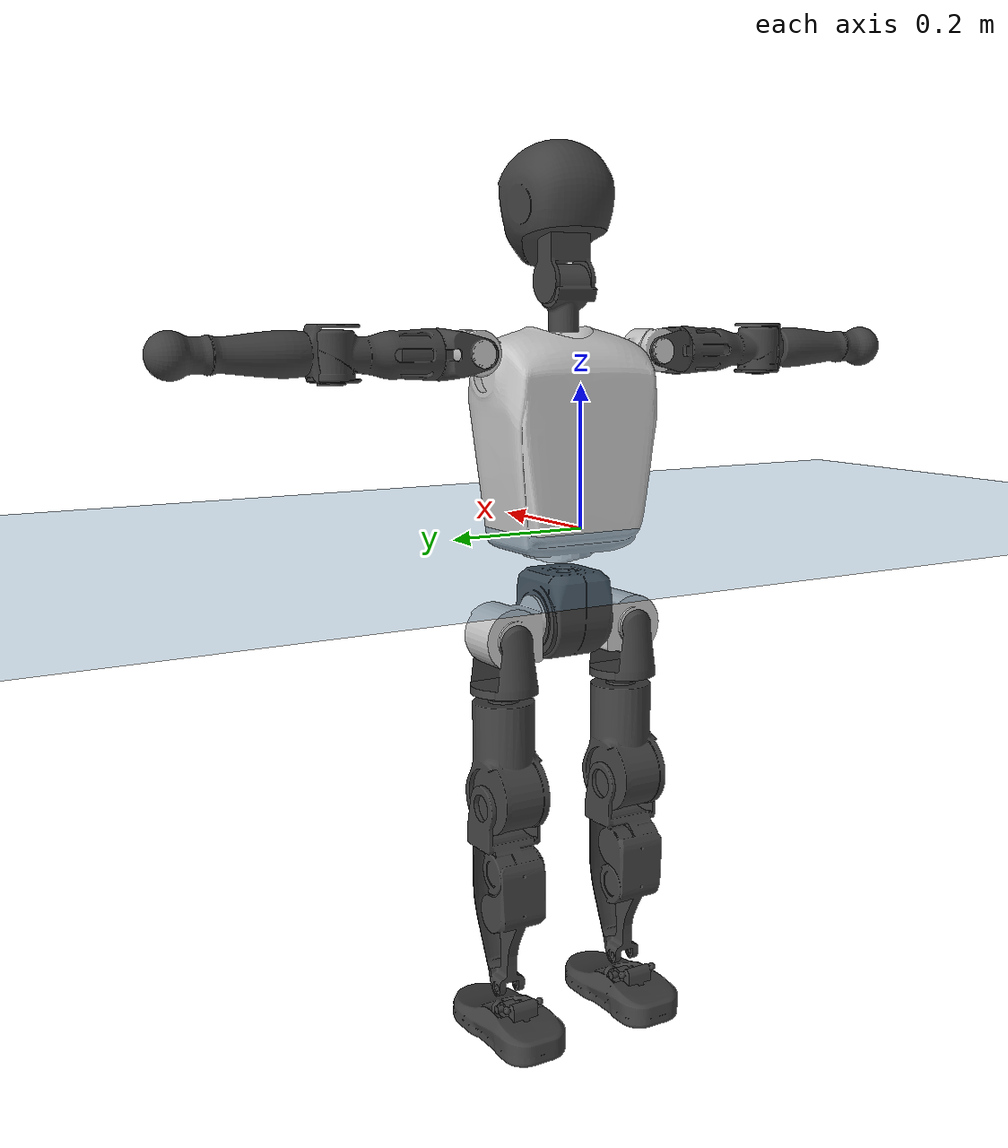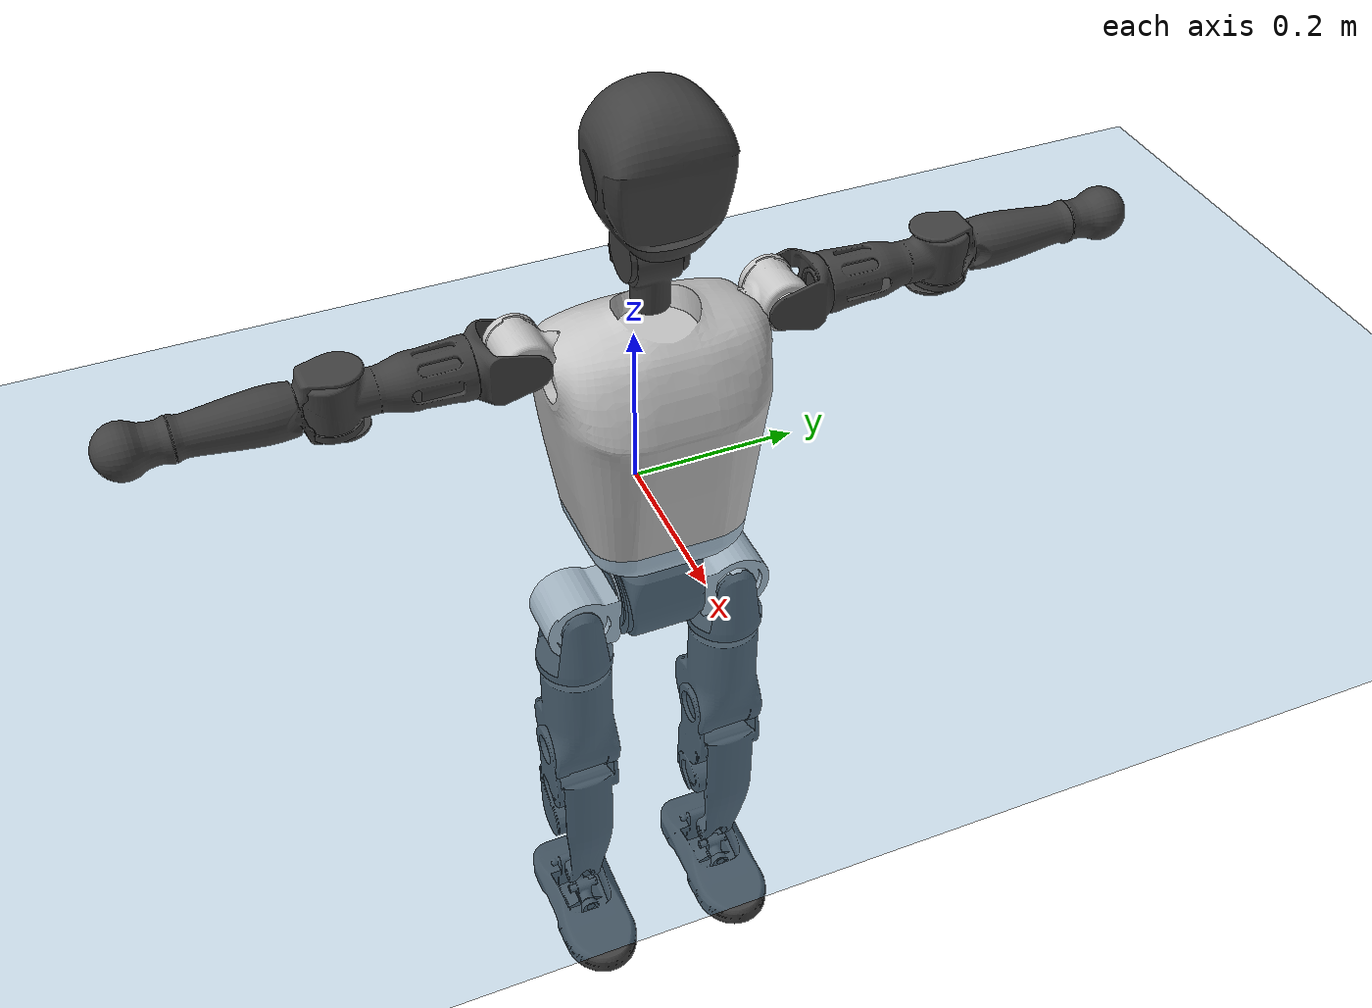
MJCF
<mujoco model="T1">
  <compiler angle="radian" assetdir="assets" balanceinertia="true" inertiafromgeom="false"/>

  <option timestep="0.005" density="1.2" viscosity="2e-05"/>

  <size nkey="1"/>

  <visual>
    <quality shadowsize="8192"/>
    <map shadowclip="0.5"/>
  </visual>

  <default>
    <default class="/">
      <joint armature="0.01" damping="0.01" frictionloss="0.1"/>
      <geom contype="0" conaffinity="0" group="1" solref="-1000 -80"/>
      <site size="0.01 0.005 0.005" group="5"/>
      <general forcelimited="true" biastype="affine" gainprm="25" biasprm="0 -25 -0.6"/>
      <default class="t1">
        <geom rgba="0.25 0.25 0.25 1"/>
        <default class="visual">
          <geom type="mesh" group="2"/>
        </default>
        <default class="collision">
          <geom group="3"/>
        </default>
        <default class="foot">
          <geom size="0.1115 0.05 0.015" type="box" condim="6" group="4" priority="1" solimp="0.015 1 0.015"/>
        </default>
        <default class="reward_collision_sphere">
          <geom group="5" rgba="1 0 0 1"/>
        </default>
      </default>
    </default>
  </default>

  <asset>
    <texture type="skybox" colorspace="auto" name="//unnamed_texture_0" builtin="gradient" rgb1="0.95 0.95 0.95" rgb2="0.95 0.95 0.95" width="100" height="600"/>
    <texture type="2d" colorspace="auto" name="texplane" builtin="checker" rgb1="0.345 0.575 0.748" rgb2="0.345 0.575 0.748" markrgb="1 1 1" width="512" height="512"/>
    <material name="MatPlane" class="/" texture="texplane" texuniform="true" texrepeat="2 2" specular="0.9"/>
    <mesh name="Trunk" class="/" file="Trunk.stl"/>
    <mesh name="H1" class="/" file="H1.stl"/>
    <mesh name="H2" class="/" file="H2.stl"/>
    <mesh name="AL1" class="/" file="AL1.stl"/>
    <mesh name="AL2" class="/" file="AL2.stl"/>
    <mesh name="AL3" class="/" file="AL3.stl"/>
    <mesh name="left_hand_link" class="/" file="left_hand_link.stl"/>
    <mesh name="AR1" class="/" file="AR1.stl"/>
    <mesh name="AR2" class="/" file="AR2.stl"/>
    <mesh name="AR3" class="/" file="AR3.stl"/>
    <mesh name="right_hand_link" class="/" file="right_hand_link.stl"/>
    <mesh name="Waist" class="/" file="Waist.stl"/>
    <mesh name="Hip_Pitch_Left" class="/" file="Hip_Pitch_Left.stl"/>
    <mesh name="Hip_Roll_Left" class="/" file="Hip_Roll_Left.stl"/>
    <mesh name="Hip_Yaw_Left" class="/" file="Hip_Yaw_Left.stl"/>
    <mesh name="Shank_Left" class="/" file="Shank_Left.stl"/>
    <mesh name="Ankle_Cross_Left" class="/" file="Ankle_Cross_Left.stl"/>
    <mesh name="left_foot_link" class="/" file="left_foot_link.stl"/>
    <mesh name="Hip_Pitch_Right" class="/" file="Hip_Pitch_Right.stl"/>
    <mesh name="Hip_Roll_Right" class="/" file="Hip_Roll_Right.stl"/>
    <mesh name="Hip_Yaw_Right" class="/" file="Hip_Yaw_Right.stl"/>
    <mesh name="Shank_Right" class="/" file="Shank_Right.stl"/>
    <mesh name="Ankle_Cross_Right" class="/" file="Ankle_Cross_Right.stl"/>
    <mesh name="right_foot_link" class="/" file="right_foot_link.stl"/>
  </asset>

  <worldbody>
    <geom name="floor" class="/" size="100 100 0.125" type="plane" group="0" material="MatPlane"/>
    <light name="toplight_shadow" class="/" pos="0 0 5" dir="0.0990148 0.0990148 -0.990148" type="directional" ambient="0.04 0.04 0.04" diffuse="0.55 0.55 0.55" specular="0.12 0.12 0.12"/>
    <light name="toplight_fill" class="/" pos="0 0 5" dir="0.0990148 0.0990148 -0.990148" type="directional" castshadow="false" ambient="0.04 0.04 0.04" diffuse="0.3 0.3 0.3" specular="0.08 0.08 0.08"/>
    <body name="trunk" childclass="t1" pos="-0.000189113 -0.00034085 -0.00154391" quat="1 -0.000433224 0.000173217 0.000798046">
      <inertial pos="0.0399271 -0.000550958 0.117773" quat="0.999963 -0.000234076 -0.00864346 3.40614e-05" mass="9.11598" diaginertia="0.0188209 0.0537817 0.0958253"/>
      <joint name="//unnamed_joint_0" type="free" armature="0" damping="0" frictionloss="0"/>
      <geom name="//unnamed_geom_1" class="visual" rgba="0.76 0.76 0.76 1" mesh="Trunk"/>
      <geom name="//unnamed_geom_2" class="collision" size="0.0695723 0.0927631 0.139145" pos="0.0437825 0 0.134001" type="box"/>
      <geom name="//unnamed_geom_3" class="reward_collision_sphere" size="0.106678" pos="0.0437825 0 0.111668"/>
      <geom name="//unnamed_geom_4" class="reward_collision_sphere" size="0.0139145" pos="0.0437825 0.079603 0"/>
      <geom name="//unnamed_geom_5" class="reward_collision_sphere" size="0.0139145" pos="0.0437825 -0.079603 0"/>
      <geom name="//unnamed_geom_6" class="reward_collision_sphere" size="0.0139145" pos="0.0437825 0.100206 0.201002"/>
      <geom name="//unnamed_geom_7" class="reward_collision_sphere" size="0.0139145" pos="0.0437825 -0.100206 0.201002"/>
      <site name="imu" pos="-0.00736414 -0.00257442 0.000797617" size="0.00927631"/>
      <camera name="track" pos="0 -1.87301 0" quat="0.707107 0.707107 0 0" mode="trackcom"/>
      <camera name="ego_camera" pos="0.0890244 0 0.469005" quat="-0.5 -0.5 0.5 0.5"/>
      <body name="H1" pos="0.0446664 -0.000143201 0.271201" quat="1 -0.000102458 0.000689685 -0.000106641">
        <inertial pos="-0.000727167 -0.00248858 0.0636728" quat="0.763453 -0.0139438 0.00199035 0.64571" mass="0.353377" diaginertia="4.95792e-05 0.000163389 0.00026122"/>
        <joint name="AAHead_yaw" pos="0 0 0" axis="0.00122581 -0.00145918 0.999998" stiffness="0.000455754" range="-1.6108 1.58249" armature="0.00947458" damping="0.014012" frictionloss="0.088224"/>
        <geom name="//unnamed_geom_8" class="visual" mesh="H1"/>
        <body name="H2" pos="0.000638743 -0.000667881 0.0691485" quat="1 0.000609862 -0.000535353 0.000374341">
          <inertial pos="0.00535202 0.0011416 0.110136" quat="0.988444 0.106218 -0.0744537 -0.0784413" mass="0.492833" diaginertia="0.000421404 0.00138258 0.00299339"/>
          <joint name="Head_pitch" pos="0 0 0" axis="-0.00364138 -0.999972 0.00656959" range="-1.22531 0.381372" armature="0.00973342" damping="0.0145254" frictionloss="0.100703"/>
          <geom name="//unnamed_geom_9" class="visual" mesh="H2"/>
          <geom name="//unnamed_geom_10" class="collision" size="0.0742105" pos="0.00729708 0 0.122835"/>
          <geom name="//unnamed_geom_11" class="reward_collision_sphere" size="0.0834868" pos="0.0145942 0 0.111668"/>
        </body>
      </body>
      <body name="AL1" pos="0.0446437 0.100088 0.244549" quat="1 0.000157933 0.000156083 -0.000238134">
        <inertial pos="-0.00248822 0.0428844 0.000908493" quat="0.504746 0.495054 -0.503963 0.49616" mass="0.426218" diaginertia="0.000282703 0.000961804 0.00050864"/>
        <joint name="Left_Shoulder_Pitch" pos="0 0 0" axis="-0.000781738 1 -0.000320571" range="-3.31208 1.21842" armature="0.00937682" damping="0.0039949" frictionloss="0.0973207"/>
        <geom name="//unnamed_geom_12" class="visual" rgba="0.76 0.76 0.76 1" mesh="AL1"/>
        <body name="AL2" pos="0.0016181 0.0433975 -0.00136183" quat="1 -3.97881e-05 0.000614488 8.07007e-06">
          <inertial pos="0.00360759 0.0358276 -0.00130988" quat="0.487349 0.511079 -0.485161 0.515663" mass="0.127935" diaginertia="8.31719e-05 0.000249286 0.000303919"/>
          <joint name="Left_Shoulder_Roll" pos="0 0 0" axis="-0.999964 -0.00332453 -0.0078172" range="-1.57708 1.74549" armature="0.00949537" damping="0.00606231" frictionloss="0.0857083"/>
          <geom name="//unnamed_geom_13" class="visual" mesh="AL2"/>
          <body name="AL3" pos="-0.000871244 0.0574544 0.000282413" quat="1 0.000191455 -6.87991e-05 -0.000355142">
            <inertial pos="-0.000281854 0.0799011 0.000802936" quat="0.706149 0.708063 -0.000233126 -0.000829045" mass="0.814553" diaginertia="0.00263449 0.00918568 0.00109106"/>
            <joint name="Left_Elbow_Pitch" pos="0 0 0" axis="-0.00532831 -0.999983 -0.00230154" range="-2.26992 2.27362" armature="0.00940575" damping="0.0120012" frictionloss="0.0881634"/>
            <geom name="//unnamed_geom_14" class="visual" mesh="AL3"/>
            <geom name="//unnamed_geom_15" class="collision" size="0.0278289 0.0695723" pos="0 0.0468253 0" quat="0.707105 0.707108 0 0" type="cylinder"/>
            <geom name="//unnamed_geom_16" class="reward_collision_sphere" size="0.0333947"/>
            <body name="left_hand_link" pos="0.00072829 0.136496 0.00270499" quat="1 0.000299661 -0.000125336 -0.000379363">
              <inertial pos="-8.63541e-05 0.101793 0.000522523" quat="0.707407 0.706807 -0.000135418 0.00028691" mass="0.270384" diaginertia="0.00168948 0.00597404 0.000381885"/>
              <joint name="Left_Elbow_Yaw" pos="0 0 0" axis="-0.00723121 0.00584559 0.999957" range="-2.45833 -0.00258183" armature="0.00933082" damping="0.012285" frictionloss="0.0908497"/>
              <geom name="//unnamed_geom_17" class="visual" mesh="left_hand_link"/>
              <geom name="//unnamed_geom_18" class="collision" size="0.0278289 0.0811677" pos="0 0.121746 0" quat="0.707105 0.707108 0 0" type="cylinder"/>
              <geom name="//unnamed_geom_19" class="reward_collision_sphere" size="0.0463816"/>
              <geom name="//unnamed_geom_20" class="reward_collision_sphere" size="0.0324671" pos="0 0.103016 0"/>
              <geom name="//unnamed_geom_21" class="reward_collision_sphere" size="0.0324671" pos="0 0.201349 0"/>
            </body>
          </body>
        </body>
      </body>
      <body name="AR1" pos="0.0419057 -0.0982201 0.245386" quat="1 8.51351e-05 0.000610295 0.000615946">
        <inertial pos="-0.0011155 -0.0413881 -0.000383888" quat="0.505546 0.494472 -0.501173 0.498745" mass="0.428705" diaginertia="0.000283902 0.000942845 0.000515724"/>
        <joint name="Right_Shoulder_Pitch" pos="0 0 0" axis="-0.00127249 -0.999995 -0.00297596" range="-1.22614 3.30256" armature="0.0091429" damping="0.00414707" frictionloss="0.095208"/>
        <geom name="//unnamed_geom_22" class="visual" rgba="0.76 0.76 0.76 1" mesh="AR1"/>
        <body name="AR2" pos="-0.000333667 -0.0443211 -0.00148184" quat="1 -9.03854e-05 -2.13604e-05 -1.9573e-05">
          <inertial pos="0.00380142 -0.0356653 0.000361992" quat="0.511798 0.486929 -0.512665 0.487993" mass="0.126046" diaginertia="8.48268e-05 0.000247405 0.000302547"/>
          <joint name="Right_Shoulder_Roll" pos="0 0 0" axis="-0.999996 0.000575599 0.00274995" range="-1.75083 1.57335" armature="0.00937891" damping="0.00106929" frictionloss="0.0974085"/>
          <geom name="//unnamed_geom_23" class="visual" mesh="AR2"/>
          <body name="AR3" pos="-0.00096478 -0.0560227 0.000531762" quat="1 -5.03131e-09 0.000129732 0.000197697">
            <inertial pos="-0.00214191 -0.0802743 -0.00022101" quat="0.707789 0.706424 1.56055e-06 -7.50331e-06" mass="0.835658" diaginertia="0.00269614 0.00921966 0.0010771"/>
            <joint name="Right_Elbow_Pitch" pos="0 0 0" axis="-0.00144806 0.99999 -0.00423281" range="-2.26686 2.28665" armature="0.00907076" damping="0.0117199" frictionloss="0.0903441"/>
            <geom name="//unnamed_geom_24" class="visual" mesh="AR3"/>
            <geom name="//unnamed_geom_25" class="collision" size="0.0278289 0.0695723" pos="0 -0.0468253 0" quat="0.707105 0.707108 0 0" type="cylinder"/>
            <geom name="//unnamed_geom_26" class="reward_collision_sphere" size="0.0333947"/>
            <body name="right_hand_link" pos="-0.000609909 -0.137299 0.00123389" quat="1 -0.000110413 -6.1897e-05 8.24326e-05">
              <inertial pos="9.53128e-06 -0.102245 0.00154361" quat="0.704093 0.710107 0.00133621 0.00065567" mass="0.264383" diaginertia="0.00168833 0.00600002 0.000373202"/>
              <joint name="Right_Elbow_Yaw" pos="0 0 0" axis="-0.000840827 0.00422034 0.999991" stiffness="0.00200797" range="-0.0100902 2.437" armature="0.00953937" damping="0.0111632" frictionloss="0.0940931"/>
              <geom name="//unnamed_geom_27" class="visual" mesh="right_hand_link"/>
              <geom name="//unnamed_geom_28" class="collision" size="0.0278289 0.0811677" pos="0 -0.121746 0" quat="0.707105 0.707108 0 0" type="cylinder"/>
              <geom name="//unnamed_geom_29" class="reward_collision_sphere" size="0.0463816"/>
              <geom name="//unnamed_geom_30" class="reward_collision_sphere" size="0.0324671" pos="0 -0.103016 0"/>
              <geom name="//unnamed_geom_31" class="reward_collision_sphere" size="0.0324671" pos="0 -0.201349 0"/>
            </body>
          </body>
        </body>
      </body>
      <body name="Waist" pos="0.0456245 -0.00032217 -0.129299" quat="1 -7.06822e-06 -0.000198839 -6.78707e-05">
        <inertial pos="0.00092976 -0.00090765 0.00720981" quat="0.983482 0.00125913 -0.180963 0.00363287" mass="2.05905" diaginertia="0.00111734 0.00388031 0.00829438"/>
        <joint name="Waist" pos="0 0 0" axis="0.000994488 -0.00275608 0.999996" range="-1.5722 1.55381" armature="0.0091139" damping="0" frictionloss="0.0918923"/>
        <geom name="//unnamed_geom_32" class="visual" mesh="Waist"/>
        <body name="Hip_Pitch_Left" pos="0.000472676 0.100873 0.000797331" quat="1 -3.11943e-05 2.82553e-05 1.77533e-05">
          <inertial pos="0.00114717 -0.00723914 -0.0222329" quat="0.97494 0.221967 0.0148976 0.000357826" mass="0.826912" diaginertia="0.000370772 0.00105076 0.00217859"/>
          <joint name="Left_Hip_Pitch" pos="0 0 0" axis="-0.00517352 0.999986 0.00146808" range="-1.78762 1.56701" armature="0.00928252" damping="0.006985" frictionloss="0.0890769"/>
          <geom name="//unnamed_geom_33" class="visual" rgba="0.76 0.76 0.76 1" mesh="Hip_Pitch_Left"/>
          <body name="Hip_Roll_Left" pos="-0.000736075 2.11705e-05 -0.0232308" quat="1 3.22342e-05 -0.000119509 -8.09784e-05">
            <inertial pos="0.00121816 -0.000156273 -0.0600004" quat="0.707724 -0.0101742 -0.00367461 0.706406" mass="0.305934" diaginertia="0.000360551 0.0010854 0.000891294"/>
            <joint name="Left_Hip_Roll" pos="0 0 0" axis="-0.999986 0.00106993 -0.00518813" stiffness="0.000249821" range="-1.56807 0.202762" armature="0.00925341" damping="0.00914716" frictionloss="0.0927399"/>
            <geom name="//unnamed_geom_34" class="visual" mesh="Hip_Roll_Left"/>
            <geom name="//unnamed_geom_35" class="reward_collision_sphere" size="0.0510197"/>
            <body name="Hip_Yaw_Left" pos="0.000460529 -3.72179e-05 -0.0902881" quat="1 -7.05731e-06 3.24704e-05 3.9287e-05">
              <inertial pos="-0.00525974 -0.000799321 -0.101156" quat="0.699857 -0.03333 -0.0304259 0.712856" mass="1.72591" diaginertia="0.0054386 0.0179888 0.00448384"/>
              <joint name="Left_Hip_Yaw" pos="0 0 0" axis="-0.000785889 -0.000420622 -1" range="-0.998931 1.01102" armature="0.00920871" damping="0.0114537" frictionloss="0.087735"/>
              <geom name="//unnamed_geom_36" class="visual" mesh="Hip_Yaw_Left"/>
              <geom name="//unnamed_geom_37" class="collision" size="0.0463816 0.0742105" type="cylinder"/>
              <body name="Shank_Left" pos="-0.00922144 0.00130135 -0.149562" quat="1 0.000797233 0.000120267 -0.000355042">
                <inertial pos="-0.00528224 -0.00151091 -0.13788" quat="0.997877 -0.000976923 -0.0245146 0.0603227" mass="1.37059" diaginertia="0.00714991 0.0245002 0.00319055"/>
                <joint name="Left_Knee_Pitch" pos="0 0 0" axis="-6.08923e-05 1 0.000107562" range="0.00767886 2.33994" armature="0.00929283" damping="0.0117414" frictionloss="0.0868501"/>
                <geom name="//unnamed_geom_38" class="visual" mesh="Shank_Left"/>
                <geom name="//unnamed_geom_39" class="collision" size="0.0463816 0.0695723" pos="0 0 -0.134001" type="cylinder"/>
                <geom name="//unnamed_geom_40" class="reward_collision_sphere" size="0.060296"/>
                <body name="Ankle_Cross_Left" pos="-0.00198505 0.000710223 -0.31359" quat="1 7.64991e-06 4.4879e-05 -9.92567e-05">
                  <inertial pos="-0.00206875 -0.000210631 -0.0088449" quat="0.440945 0.557994 0.548492 0.439735" mass="0.0571497" diaginertia="5.98553e-06 1.81866e-05 1.95567e-05"/>
                  <joint name="Left_Ankle_Pitch" pos="0 0 0" axis="-0.00265188 0.999995 -0.00149675" range="-0.867905 0.32866" armature="0.00937275" damping="0.00537246" frictionloss="0.0940783"/>
                  <geom name="//unnamed_geom_41" class="visual" mesh="Ankle_Cross_Left"/>
                  <body name="left_foot_link" pos="-0.000374875 -9.61494e-05 -0.0140155" quat="1 -0.000168128 -0.000122231 -0.000161846">
                    <inertial pos="-0.000187204 -2.08269e-05 -0.0081969" quat="5.75839e-05 0.620735 -1.94757e-05 0.78402" mass="0.555443" diaginertia="0.000563661 0.00173107 0.00387725"/>
                    <joint name="Left_Ankle_Roll" pos="0 0 0" axis="-1 0.000568255 0.000261425" range="-0.44069 0.420215" armature="0.00923812" damping="0.0178518" frictionloss="0.0923461"/>
                    <geom name="//unnamed_geom_42" class="visual" mesh="left_foot_link"/>
                    <geom name="left_foot" class="foot" size="0.107252 0.0507097 0.0138049" pos="0.00729708 0 -0.0167502"/>
                    <geom name="//unnamed_geom_44" class="reward_collision_sphere" size="0.0482368" pos="0.00729708 0 -0.0167502"/>
                    <geom name="//unnamed_geom_45" class="reward_collision_sphere" size="0.0278289" pos="0.0693223 -0.0215396 -0.0167502"/>
                    <geom name="//unnamed_geom_46" class="reward_collision_sphere" size="0.0278289" pos="-0.0510796 -0.0215396 -0.0167502"/>
                    <site name="left_foot" class="foot" pos="0.00729708 0 -0.0167502" size="0.00927631"/>
                  </body>
                </body>
              </body>
            </body>
          </body>
        </body>
        <body name="Hip_Pitch_Right" pos="-0.0012698 -0.0986398 0.000835222" quat="1 8.6968e-05 -0.000350428 0.00018197">
          <inertial pos="0.000240178 0.00530384 -0.020371" quat="0.974012 -0.22608 0.011632 -0.00723772" mass="0.810345" diaginertia="0.000373813 0.00104943 0.00213382"/>
          <joint name="Right_Hip_Pitch" pos="0 0 0" axis="-0.000229342 -1 -0.000676821" range="-1.58 1.77864" armature="0.00932847" damping="0.00437232" frictionloss="0.100582"/>
          <geom name="//unnamed_geom_47" class="visual" rgba="0.76 0.76 0.76 1" mesh="Hip_Pitch_Right"/>
          <body name="Hip_Roll_Right" pos="-0.00174324 -0.0006732 -0.0218834" quat="1 -9.67421e-05 1.58416e-05 7.01093e-07">
            <inertial pos="0.0016059 -0.000100097 -0.060862" quat="0.707082 -0.00599713 -0.00597884 0.707081" mass="0.307071" diaginertia="0.000351098 0.00107931 0.000883836"/>
            <joint name="Right_Hip_Roll" pos="0 0 0" axis="-1 0.000104703 -0.000236616" range="-0.207353 1.58891" armature="0.00946444" damping="0.0134912" frictionloss="0.0957719"/>
            <geom name="//unnamed_geom_48" class="visual" mesh="Hip_Roll_Right"/>
            <geom name="//unnamed_geom_49" class="reward_collision_sphere" size="0.0510197"/>
            <body name="Hip_Yaw_Right" pos="0.000797324 0.000596033 -0.0910052" quat="1 0.000153648 -6.27888e-05 -0.000136881">
              <inertial pos="-0.00558213 0.00153246 -0.0996024" quat="0.714322 -0.0316382 -0.0345619 0.698247" mass="1.7105" diaginertia="0.00527924 0.0176352 0.00445063"/>
              <joint name="Right_Hip_Yaw" pos="0 0 0" axis="-0.00176297 0.00141303 -0.999997" stiffness="0.00302018" range="-1.00129 1.00558" armature="0.00925668" damping="0.0112343" frictionloss="0.0930907"/>
              <geom name="//unnamed_geom_50" class="visual" mesh="Hip_Yaw_Right"/>
              <geom name="//unnamed_geom_51" class="collision" size="0.0463816 0.0742105" type="cylinder"/>
              <body name="Shank_Right" pos="-0.00928185 -0.00104279 -0.14826" quat="1 -5.6938e-06 1.20035e-05 3.10434e-06">
                <inertial pos="-0.00667933 -0.00121635 -0.136826" quat="0.999267 -0.00246505 -0.0161132 -0.0346514" mass="1.39582" diaginertia="0.00712718 0.024707 0.00334595"/>
                <joint name="Right_Knee_Pitch" pos="0 0 0" axis="0.00585545 -0.999983 -0.000346095" range="-2.33982 -0.02761" armature="0.00921786" damping="0.00570778" frictionloss="0.0932229"/>
                <geom name="//unnamed_geom_52" class="visual" mesh="Shank_Right"/>
                <geom name="//unnamed_geom_53" class="collision" size="0.0463816 0.0695723" pos="0 0 -0.134001" type="cylinder"/>
                <geom name="//unnamed_geom_54" class="reward_collision_sphere" size="0.060296"/>
                <body name="Ankle_Cross_Right" pos="0.00126025 0.000423172 -0.313843" quat="1 2.26555e-05 0.000365382 0.000363549">
                  <inertial pos="-0.00274598 0.00109246 -0.00938071" quat="0.441815 0.551092 0.553735 0.440993" mass="0.0591666" diaginertia="6.04178e-06 1.84991e-05 1.97985e-05"/>
                  <joint name="Right_Ankle_Pitch" pos="0 0 0" axis="-0.000501856 -1 0.000330536" range="-0.309192 0.860062" armature="0.00916026" damping="0.00391819" frictionloss="0.0937893"/>
                  <geom name="//unnamed_geom_55" class="visual" mesh="Ankle_Cross_Right"/>
                  <body name="right_foot_link" pos="0.00121962 -0.000470054 -0.0137614" quat="1 -5.49582e-05 -0.000136487 -2.31609e-06">
                    <inertial pos="0.000151098 0.000941774 -0.00835501" quat="-0.00106297 0.619612 -0.00069743 0.784907" mass="0.545488" diaginertia="0.000559954 0.00172728 0.00382863"/>
                    <joint name="Right_Ankle_Roll" pos="0 0 0" axis="-1 -0.00050025 -0.000370184" range="-0.428633 0.435306" armature="0.00951936" damping="0.0136926" frictionloss="0.102269"/>
                    <geom name="//unnamed_geom_56" class="visual" mesh="right_foot_link"/>
                    <geom name="right_foot" class="foot" size="0.102067 0.0419413 0.01513" pos="0.00729708 0 -0.0167502"/>
                    <geom name="//unnamed_geom_58" class="reward_collision_sphere" size="0.0371052"/>
                    <geom name="//unnamed_geom_59" class="reward_collision_sphere" size="0.0278289" pos="0.00729708 0 -0.0167502"/>
                    <geom name="//unnamed_geom_60" class="reward_collision_sphere" size="0.0278289" pos="0.0693223 0.0215396 -0.0167502"/>
                    <geom name="//unnamed_geom_61" class="reward_collision_sphere" size="0.0278289" pos="-0.0510796 0.0215396 -0.0167502"/>
                    <site name="right_foot" class="foot" pos="0.00729708 0 -0.0167502" size="0.00927631"/>
                  </body>
                </body>
              </body>
            </body>
          </body>
        </body>
      </body>
    </body>
  </worldbody>

  <contact>
    <pair class="/" geom1="floor" geom2="left_foot" name="//unnamed_contact_0"/>
    <pair class="/" geom1="floor" geom2="right_foot" name="//unnamed_contact_1"/>
  </contact>

  <actuator>
    <general name="AAHead_yaw" class="/" joint="AAHead_yaw" forcerange="-6.54033 6.54033" gainprm="23.3171" biasprm="0 -23.3171 -0.544108"/>
    <general name="Head_pitch" class="/" joint="Head_pitch" forcerange="-6.25881 6.25881" gainprm="23.3171" biasprm="0 -23.3171 -0.544108"/>
    <general name="Left_Shoulder_Pitch" class="/" joint="Left_Shoulder_Pitch" forcerange="-17.2248 17.2248" gainprm="23.3171" biasprm="0 -23.3171 -0.544108"/>
    <general name="Left_Shoulder_Roll" class="/" joint="Left_Shoulder_Roll" forcerange="-16.365 16.365" gainprm="23.3171" biasprm="0 -23.3171 -0.544108"/>
    <general name="Left_Elbow_Pitch" class="/" joint="Left_Elbow_Pitch" forcerange="-16.209 16.209" gainprm="23.3171" biasprm="0 -23.3171 -0.544108"/>
    <general name="Left_Elbow_Yaw" class="/" joint="Left_Elbow_Yaw" forcerange="-16.8086 16.8086" gainprm="23.3171" biasprm="0 -23.3171 -0.544108"/>
    <general name="Right_Shoulder_Pitch" class="/" joint="Right_Shoulder_Pitch" forcerange="-16.7301 16.7301" gainprm="23.3171" biasprm="0 -23.3171 -0.544108"/>
    <general name="Right_Shoulder_Roll" class="/" joint="Right_Shoulder_Roll" forcerange="-16.3625 16.3625" gainprm="23.3171" biasprm="0 -23.3171 -0.544108"/>
    <general name="Right_Elbow_Pitch" class="/" joint="Right_Elbow_Pitch" forcerange="-16.8311 16.8311" gainprm="23.3171" biasprm="0 -23.3171 -0.544108"/>
    <general name="Right_Elbow_Yaw" class="/" joint="Right_Elbow_Yaw" forcerange="-16.7126 16.7126" gainprm="23.3171" biasprm="0 -23.3171 -0.544108"/>
    <general name="Waist" class="/" joint="Waist" forcerange="-28.1476 28.1476" gainprm="23.3171" biasprm="0 -23.3171 -0.544108"/>
    <general name="Left_Hip_Pitch" class="/" joint="Left_Hip_Pitch" forcerange="-41.8686 41.8686" gainprm="23.3171" biasprm="0 -23.3171 -0.544108"/>
    <general name="Left_Hip_Roll" class="/" joint="Left_Hip_Roll" forcerange="-29.5938 29.5938" gainprm="23.3171" biasprm="0 -23.3171 -0.544108"/>
    <general name="Left_Hip_Yaw" class="/" joint="Left_Hip_Yaw" forcerange="-28.33 28.33" gainprm="23.3171" biasprm="0 -23.3171 -0.544108"/>
    <general name="Left_Knee_Pitch" class="/" joint="Left_Knee_Pitch" forcerange="-58.3547 58.3547" gainprm="23.3171" biasprm="0 -23.3171 -0.544108"/>
    <general name="Left_Ankle_Pitch" class="/" joint="Left_Ankle_Pitch" forcerange="-18.9407 18.9407" gainprm="23.3171" biasprm="0 -23.3171 -0.544108"/>
    <general name="Left_Ankle_Roll" class="/" joint="Left_Ankle_Roll" forcerange="-14.3103 14.3103" gainprm="23.3171" biasprm="0 -23.3171 -0.544108"/>
    <general name="Right_Hip_Pitch" class="/" joint="Right_Hip_Pitch" forcerange="-40.1265 40.1265" gainprm="23.3171" biasprm="0 -23.3171 -0.544108"/>
    <general name="Right_Hip_Roll" class="/" joint="Right_Hip_Roll" forcerange="-27.2854 27.2854" gainprm="23.3171" biasprm="0 -23.3171 -0.544108"/>
    <general name="Right_Hip_Yaw" class="/" joint="Right_Hip_Yaw" forcerange="-27.4996 27.4996" gainprm="23.3171" biasprm="0 -23.3171 -0.544108"/>
    <general name="Right_Knee_Pitch" class="/" joint="Right_Knee_Pitch" forcerange="-56.0245 56.0245" gainprm="23.3171" biasprm="0 -23.3171 -0.544108"/>
    <general name="Right_Ankle_Pitch" class="/" joint="Right_Ankle_Pitch" forcerange="-18.7623 18.7623" gainprm="23.3171" biasprm="0 -23.3171 -0.544108"/>
    <general name="Right_Ankle_Roll" class="/" joint="Right_Ankle_Roll" forcerange="-13.7695 13.7695" gainprm="23.3171" biasprm="0 -23.3171 -0.544108"/>
  </actuator>

  <sensor>
    <gyro site="imu" name="imu_angular_velocity"/>
    <velocimeter site="imu" name="imu_linear_velocity"/>
    <framelinvel objtype="site" objname="left_foot" name="left_foot_global_linear_velocity"/>
    <framelinvel objtype="site" objname="right_foot" name="right_foot_global_linear_velocity"/>
  </sensor>

  <keyframe>
    <key name="home" qpos="0 0 0.6385 1 0 0 0 0 0 0 1.4 0 -0.4 0 -1.4 0 0.4 0 -0.4 0 0 0.8 -0.4 0 0.4 0 0 -0.8 0.4 0"/>
  </keyframe>
</mujoco>
